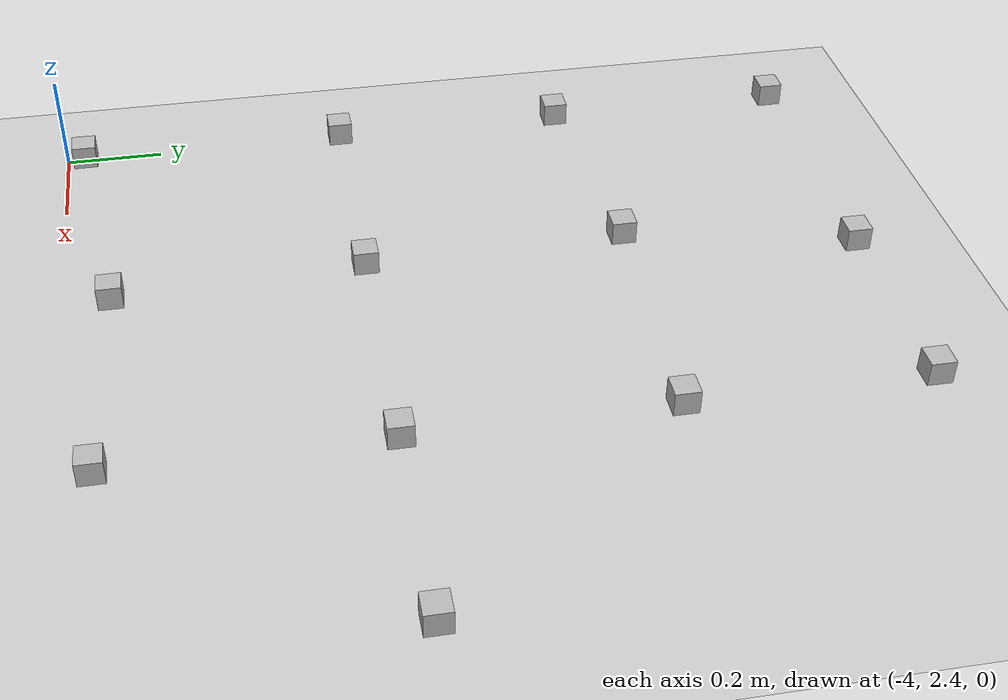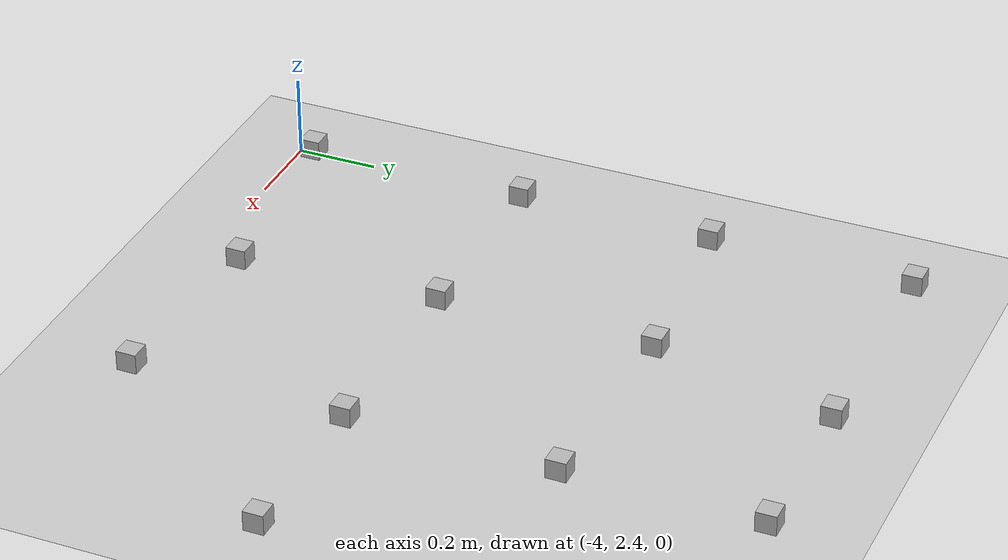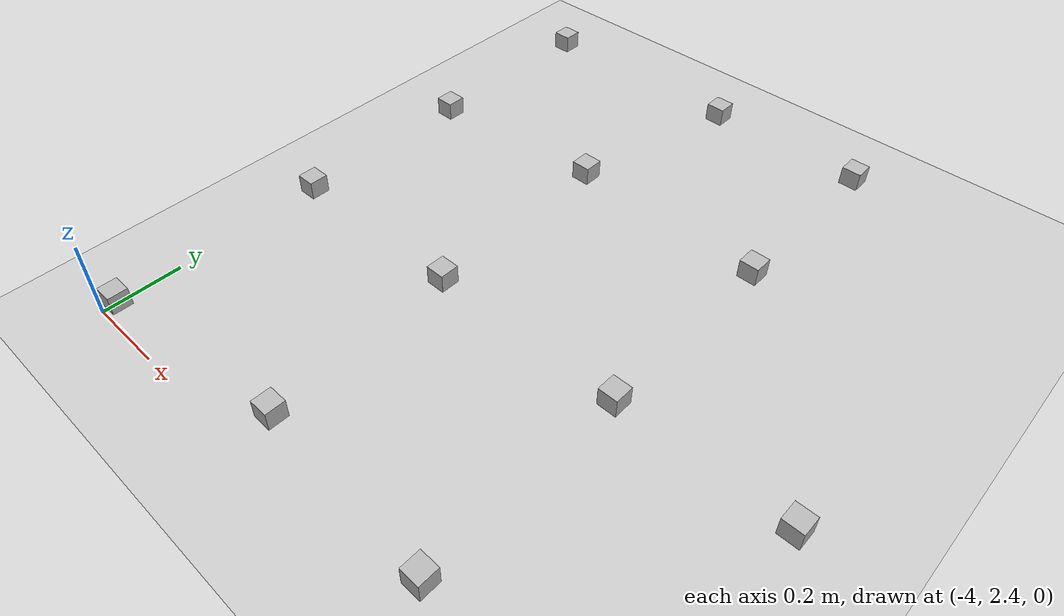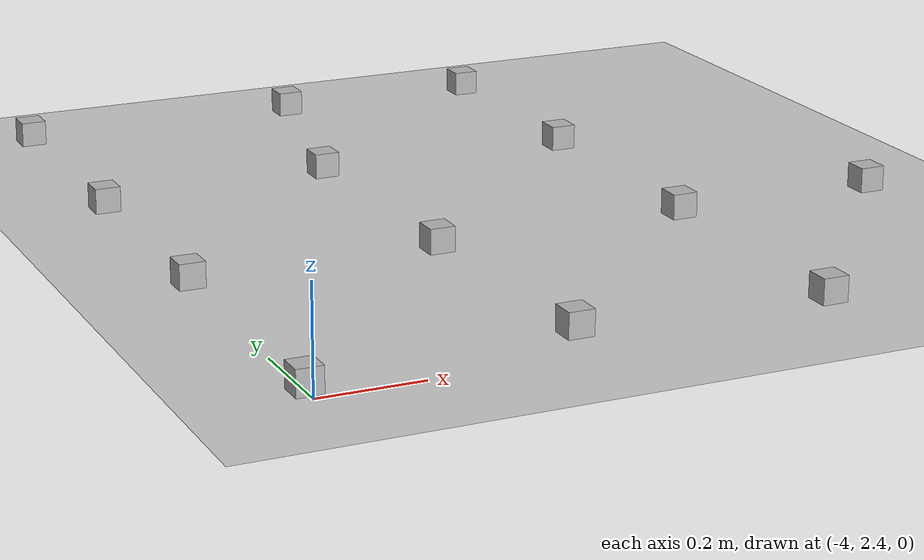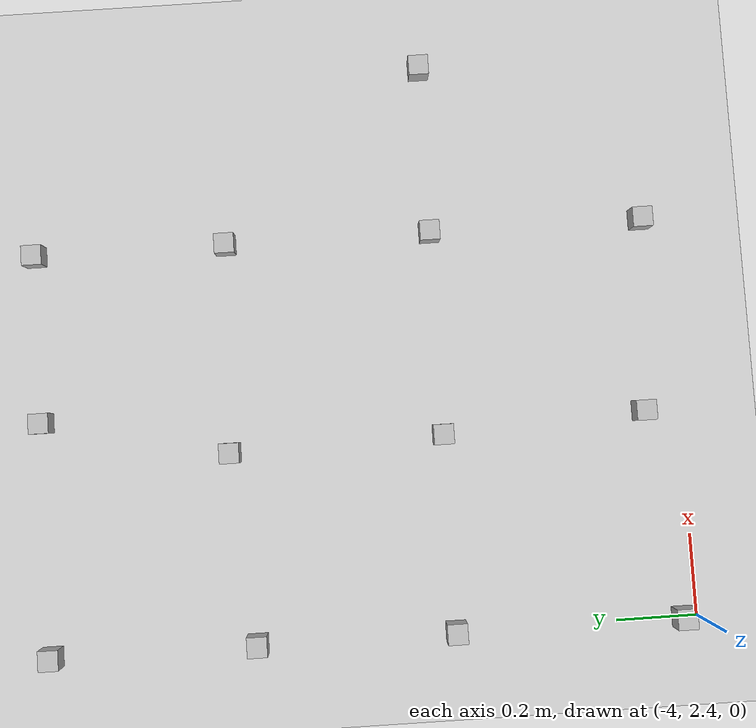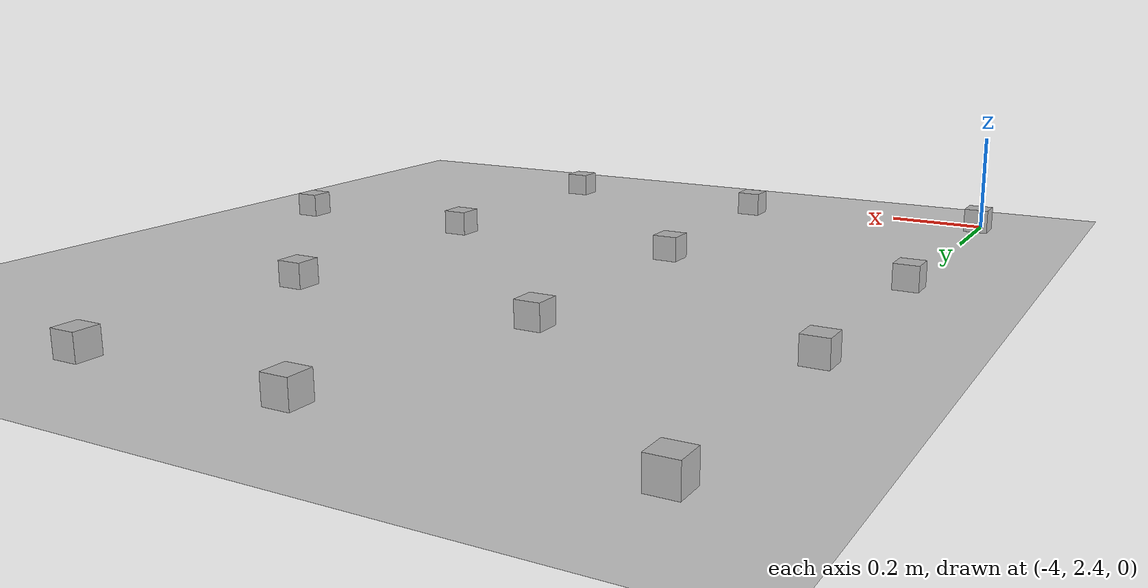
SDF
<sdf version="1.4">
 <world name="default">
  <model name="ground_plane">
   <static>1</static>
   <link name="link">
    <collision name="collision">
     <geometry><plane><normal>0 0 1</normal><size>100 100</size></plane></geometry>
     <surface><friction><ode><mu>100</mu><mu2>50</mu2></ode></friction></surface>
    </collision>
    <visual name="visual">
     <cast_shadows>0</cast_shadows>
     <geometry><plane><normal>0 0 1</normal><size>100 100</size></plane></geometry>
     <material>
      <script><uri>file://media/materials/scripts/gazebo.material</uri><name>Gazebo/Grey</name></script>
     </material>
    </visual>
    <velocity_decay><linear>0</linear><angular>0</angular></velocity_decay>
   </link>
  </model>
  <model name="at0_32">
   <static>1</static>
   <link name="link">
    <pose>0 0 0.025 0 -0 0</pose>
    <inertial>
     <mass>0.1</mass>
     <inertia><ixx>4e-05</ixx><ixy>0</ixy><ixz>0</ixz><iyy>4e-05</iyy><iyz>0</iyz><izz>4e-05</izz></inertia>
    </inertial>
    <visual name="visual">
     <transparency>0.1</transparency>
     <geometry><box><size>0.05 0.05 0.05</size></box></geometry>
     <material>
      <script>
       <uri>model://at0/materials/scripts</uri>
       <uri>model://at0/materials/textures</uri>
       <name>at0/Diffuse</name>
      </script>
     </material>
    </visual>
    <collision name="collision">
     <pose>0 0 -0.0125 0 -0 0</pose>
     <geometry><box><size>0.05 0.05 0.025</size></box></geometry>
     <surface><friction><ode><mu>0.8</mu><mu2>0.7</mu2></ode></friction></surface>
    </collision>
    <velocity_decay><linear>0</linear><angular>0</angular></velocity_decay>
   </link>
   <pose>-2.57592 3 0 0 -0 0</pose>
  </model>
  <model name="at0_33">
   <static>1</static>
   <link name="link">
    <pose>0 0 0.025 0 -0 0</pose>
    <inertial>
     <mass>0.1</mass>
     <inertia><ixx>4e-05</ixx><ixy>0</ixy><ixz>0</ixz><iyy>4e-05</iyy><iyz>0</iyz><izz>4e-05</izz></inertia>
    </inertial>
    <visual name="visual">
     <transparency>0.1</transparency>
     <geometry><box><size>0.05 0.05 0.05</size></box></geometry>
     <material>
      <script>
       <uri>model://at0/materials/scripts</uri>
       <uri>model://at0/materials/textures</uri>
       <name>at0/Diffuse</name>
      </script>
     </material>
    </visual>
    <collision name="collision">
     <pose>0 0 -0.0125 0 -0 0</pose>
     <geometry><box><size>0.05 0.05 0.025</size></box></geometry>
     <surface><friction><ode><mu>0.8</mu><mu2>0.7</mu2></ode></friction></surface>
    </collision>
    <velocity_decay><linear>0</linear><angular>0</angular></velocity_decay>
   </link>
   <pose>-3 3 0 0 -0 0</pose>
  </model>
  <model name="at0_34">
   <static>1</static>
   <link name="link">
    <pose>0 0 0.025 0 -0 0</pose>
    <inertial>
     <mass>0.1</mass>
     <inertia><ixx>4e-05</ixx><ixy>0</ixy><ixz>0</ixz><iyy>4e-05</iyy><iyz>0</iyz><izz>4e-05</izz></inertia>
    </inertial>
    <visual name="visual">
     <transparency>0.1</transparency>
     <geometry><box><size>0.05 0.05 0.05</size></box></geometry>
     <material>
      <script>
       <uri>model://at0/materials/scripts</uri>
       <uri>model://at0/materials/textures</uri>
       <name>at0/Diffuse</name>
      </script>
     </material>
    </visual>
    <collision name="collision">
     <pose>0 0 -0.0125 0 -0 0</pose>
     <geometry><box><size>0.05 0.05 0.025</size></box></geometry>
     <surface><friction><ode><mu>0.8</mu><mu2>0.7</mu2></ode></friction></surface>
    </collision>
    <velocity_decay><linear>0</linear><angular>0</angular></velocity_decay>
   </link>
   <pose>-3 2.46463 0 0 -0 0</pose>
  </model>
  <model name="at0_26">
   <static>1</static>
   <link name="link">
    <pose>0 0 0.025 0 -0 0</pose>
    <inertial>
     <mass>0.1</mass>
     <inertia><ixx>4e-05</ixx><ixy>0</ixy><ixz>0</ixz><iyy>4e-05</iyy><iyz>0</iyz><izz>4e-05</izz></inertia>
    </inertial>
    <visual name="visual">
     <transparency>0.1</transparency>
     <geometry><box><size>0.05 0.05 0.05</size></box></geometry>
     <material>
      <script>
       <uri>model://at0/materials/scripts</uri>
       <uri>model://at0/materials/textures</uri>
       <name>at0/Diffuse</name>
      </script>
     </material>
    </visual>
    <collision name="collision">
     <pose>0 0 -0.0125 0 -0 0</pose>
     <geometry><box><size>0.05 0.05 0.025</size></box></geometry>
     <surface><friction><ode><mu>0.8</mu><mu2>0.7</mu2></ode></friction></surface>
    </collision>
    <velocity_decay><linear>0</linear><angular>0</angular></velocity_decay>
   </link>
   <pose>-3.51221 3 0 0 -0 0</pose>
  </model>
  <model name="at0_27">
   <static>1</static>
   <link name="link">
    <pose>0 0 0.025 0 -0 0</pose>
    <inertial>
     <mass>0.1</mass>
     <inertia><ixx>4e-05</ixx><ixy>0</ixy><ixz>0</ixz><iyy>4e-05</iyy><iyz>0</iyz><izz>4e-05</izz></inertia>
    </inertial>
    <visual name="visual">
     <transparency>0.1</transparency>
     <geometry><box><size>0.05 0.05 0.05</size></box></geometry>
     <material>
      <script>
       <uri>model://at0/materials/scripts</uri>
       <uri>model://at0/materials/textures</uri>
       <name>at0/Diffuse</name>
      </script>
     </material>
    </visual>
    <collision name="collision">
     <pose>0 0 -0.0125 0 -0 0</pose>
     <geometry><box><size>0.05 0.05 0.025</size></box></geometry>
     <surface><friction><ode><mu>0.8</mu><mu2>0.7</mu2></ode></friction></surface>
    </collision>
    <velocity_decay><linear>0</linear><angular>0</angular></velocity_decay>
   </link>
   <pose>-3.484 2.49462 0 0 -0 0</pose>
  </model>
  <model name="at0_120">
   <static>1</static>
   <link name="link">
    <pose>0 0 0.025 0 -0 0</pose>
    <inertial>
     <mass>0.1</mass>
     <inertia><ixx>4e-05</ixx><ixy>0</ixy><ixz>0</ixz><iyy>4e-05</iyy><iyz>0</iyz><izz>4e-05</izz></inertia>
    </inertial>
    <visual name="visual">
     <transparency>0.1</transparency>
     <geometry><box><size>0.05 0.05 0.05</size></box></geometry>
     <material>
      <script>
       <uri>model://at0/materials/scripts</uri>
       <uri>model://at0/materials/textures</uri>
       <name>at0/Diffuse</name>
      </script>
     </material>
    </visual>
    <collision name="collision">
     <pose>0 0 -0.0125 0 -0 0</pose>
     <geometry><box><size>0.05 0.05 0.025</size></box></geometry>
     <surface><friction><ode><mu>0.8</mu><mu2>0.7</mu2></ode></friction></surface>
    </collision>
    <velocity_decay><linear>0</linear><angular>0</angular></velocity_decay>
   </link>
   <pose>-3.52537 3.53339 0 0 -0 0</pose>
  </model>
  <model name="at0_121">
   <static>1</static>
   <link name="link">
    <pose>0 0 0.025 0 -0 0</pose>
    <inertial>
     <mass>0.1</mass>
     <inertia><ixx>4e-05</ixx><ixy>0</ixy><ixz>0</ixz><iyy>4e-05</iyy><iyz>0</iyz><izz>4e-05</izz></inertia>
    </inertial>
    <visual name="visual">
     <transparency>0.1</transparency>
     <geometry><box><size>0.05 0.05 0.05</size></box></geometry>
     <material>
      <script>
       <uri>model://at0/materials/scripts</uri>
       <uri>model://at0/materials/textures</uri>
       <name>at0/Diffuse</name>
      </script>
     </material>
    </visual>
    <collision name="collision">
     <pose>0 0 -0.0125 0 -0 0</pose>
     <geometry><box><size>0.05 0.05 0.025</size></box></geometry>
     <surface><friction><ode><mu>0.8</mu><mu2>0.7</mu2></ode></friction></surface>
    </collision>
    <velocity_decay><linear>0</linear><angular>0</angular></velocity_decay>
   </link>
   <pose>-4 3.49077 0 0 -0 0</pose>
  </model>
  <model name="at0_122">
   <static>1</static>
   <link name="link">
    <pose>0 0 0.025 0 -0 0</pose>
    <inertial>
     <mass>0.1</mass>
     <inertia><ixx>4e-05</ixx><ixy>0</ixy><ixz>0</ixz><iyy>4e-05</iyy><iyz>0</iyz><izz>4e-05</izz></inertia>
    </inertial>
    <visual name="visual">
     <transparency>0.1</transparency>
     <geometry><box><size>0.05 0.05 0.05</size></box></geometry>
     <material>
      <script>
       <uri>model://at0/materials/scripts</uri>
       <uri>model://at0/materials/textures</uri>
       <name>at0/Diffuse</name>
      </script>
     </material>
    </visual>
    <collision name="collision">
     <pose>0 0 -0.0125 0 -0 0</pose>
     <geometry><box><size>0.05 0.05 0.025</size></box></geometry>
     <surface><friction><ode><mu>0.8</mu><mu2>0.7</mu2></ode></friction></surface>
    </collision>
    <velocity_decay><linear>0</linear><angular>0</angular></velocity_decay>
   </link>
   <pose>-4 2.43729 0 0 -0 0</pose>
  </model>
  <model name="at0_148">
   <static>1</static>
   <link name="link">
    <pose>0 0 0.025 0 -0 0</pose>
    <inertial>
     <mass>0.1</mass>
     <inertia><ixx>4e-05</ixx><ixy>0</ixy><ixz>0</ixz><iyy>4e-05</iyy><iyz>0</iyz><izz>4e-05</izz></inertia>
    </inertial>
    <visual name="visual">
     <transparency>0.1</transparency>
     <geometry><box><size>0.05 0.05 0.05</size></box></geometry>
     <material>
      <script>
       <uri>model://at0/materials/scripts</uri>
       <uri>model://at0/materials/textures</uri>
       <name>at0/Diffuse</name>
      </script>
     </material>
    </visual>
    <collision name="collision">
     <pose>0 0 -0.0125 0 -0 0</pose>
     <geometry><box><size>0.05 0.05 0.025</size></box></geometry>
     <surface><friction><ode><mu>0.8</mu><mu2>0.7</mu2></ode></friction></surface>
    </collision>
    <velocity_decay><linear>0</linear><angular>0</angular></velocity_decay>
   </link>
   <pose>-3.42206 4 0 0 -0 0</pose>
  </model>
  <model name="at0_149">
   <static>1</static>
   <link name="link">
    <pose>0 0 0.025 0 -0 0</pose>
    <inertial>
     <mass>0.1</mass>
     <inertia><ixx>4e-05</ixx><ixy>0</ixy><ixz>0</ixz><iyy>4e-05</iyy><iyz>0</iyz><izz>4e-05</izz></inertia>
    </inertial>
    <visual name="visual">
     <transparency>0.1</transparency>
     <geometry><box><size>0.05 0.05 0.05</size></box></geometry>
     <material>
      <script>
       <uri>model://at0/materials/scripts</uri>
       <uri>model://at0/materials/textures</uri>
       <name>at0/Diffuse</name>
      </script>
     </material>
    </visual>
    <collision name="collision">
     <pose>0 0 -0.0125 0 -0 0</pose>
     <geometry><box><size>0.05 0.05 0.025</size></box></geometry>
     <surface><friction><ode><mu>0.8</mu><mu2>0.7</mu2></ode></friction></surface>
    </collision>
    <velocity_decay><linear>0</linear><angular>0</angular></velocity_decay>
   </link>
   <pose>-4 4 0 0 -0 0</pose>
  </model>
  <model name="at0_150">
   <static>1</static>
   <link name="link">
    <pose>0 0 0.025 0 -0 0</pose>
    <inertial>
     <mass>0.1</mass>
     <inertia><ixx>4e-05</ixx><ixy>0</ixy><ixz>0</ixz><iyy>4e-05</iyy><iyz>0</iyz><izz>4e-05</izz></inertia>
    </inertial>
    <visual name="visual">
     <transparency>0.1</transparency>
     <geometry><box><size>0.05 0.05 0.05</size></box></geometry>
     <material>
      <script>
       <uri>model://at0/materials/scripts</uri>
       <uri>model://at0/materials/textures</uri>
       <name>at0/Diffuse</name>
      </script>
     </material>
    </visual>
    <collision name="collision">
     <pose>0 0 -0.0125 0 -0 0</pose>
     <geometry><box><size>0.05 0.05 0.025</size></box></geometry>
     <surface><friction><ode><mu>0.8</mu><mu2>0.7</mu2></ode></friction></surface>
    </collision>
    <velocity_decay><linear>0</linear><angular>0</angular></velocity_decay>
   </link>
   <pose>-4 3 0 0 -0 0</pose>
  </model>
  <model name="at0_160">
   <static>1</static>
   <link name="link">
    <pose>0 0 0.025 0 -0 0</pose>
    <inertial>
     <mass>0.1</mass>
     <inertia><ixx>4e-05</ixx><ixy>0</ixy><ixz>0</ixz><iyy>4e-05</iyy><iyz>0</iyz><izz>4e-05</izz></inertia>
    </inertial>
    <visual name="visual">
     <transparency>0.1</transparency>
     <geometry><box><size>0.05 0.05 0.05</size></box></geometry>
     <material>
      <script>
       <uri>model://at0/materials/scripts</uri>
       <uri>model://at0/materials/textures</uri>
       <name>at0/Diffuse</name>
      </script>
     </material>
    </visual>
    <collision name="collision">
     <pose>0 0 -0.0125 0 -0 0</pose>
     <geometry><box><size>0.05 0.05 0.025</size></box></geometry>
     <surface><friction><ode><mu>0.8</mu><mu2>0.7</mu2></ode></friction></surface>
    </collision>
    <velocity_decay><linear>0</linear><angular>0</angular></velocity_decay>
   </link>
   <pose>-3 3.51731 0 0 -0 0</pose>
  </model>
  <model name="at0_183">
   <static>1</static>
   <link name="link">
    <pose>0 0 0.025 0 -0 0</pose>
    <inertial>
     <mass>0.1</mass>
     <inertia><ixx>4e-05</ixx><ixy>0</ixy><ixz>0</ixz><iyy>4e-05</iyy><iyz>0</iyz><izz>4e-05</izz></inertia>
    </inertial>
    <visual name="visual">
     <transparency>0.1</transparency>
     <geometry><box><size>0.05 0.05 0.05</size></box></geometry>
     <material>
      <script>
       <uri>model://at0/materials/scripts</uri>
       <uri>model://at0/materials/textures</uri>
       <name>at0/Diffuse</name>
      </script>
     </material>
    </visual>
    <collision name="collision">
     <pose>0 0 -0.0125 0 -0 0</pose>
     <geometry><box><size>0.05 0.05 0.025</size></box></geometry>
     <surface><friction><ode><mu>0.8</mu><mu2>0.7</mu2></ode></friction></surface>
    </collision>
    <velocity_decay><linear>0</linear><angular>0</angular></velocity_decay>
   </link>
   <pose>-3 4 0 0 -0 0</pose>
  </model>
 </world>
</sdf>
